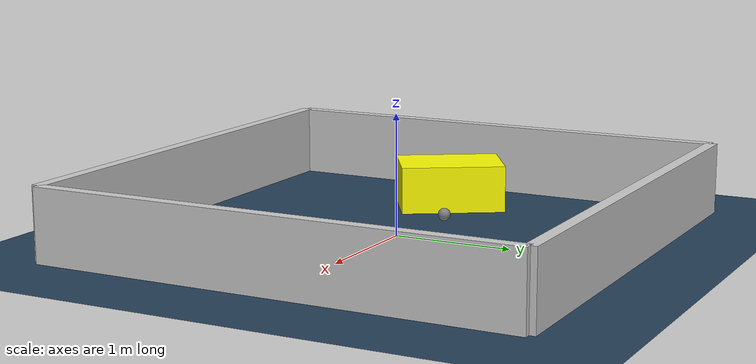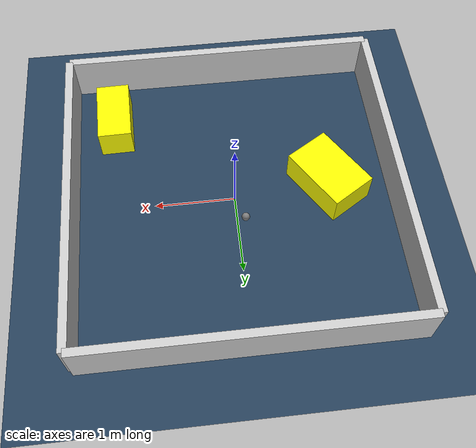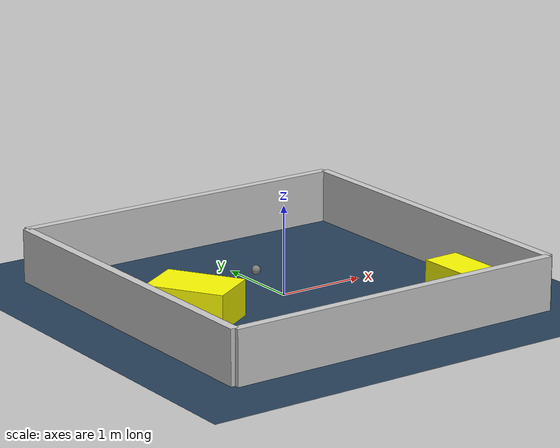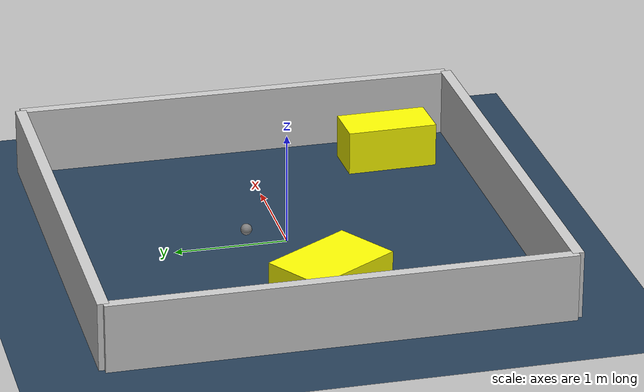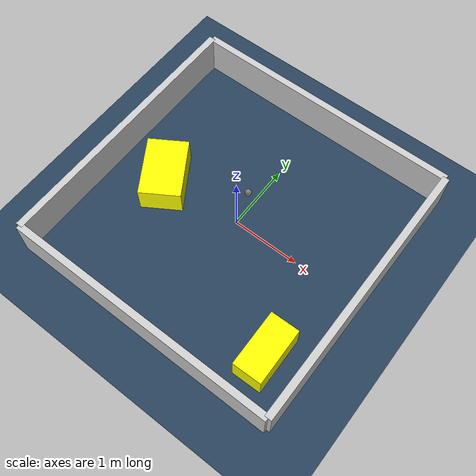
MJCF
<?xml version="1.0" ?>
<mujoco model="generated_environment">
  <option timestep="0.01" integrator="RK4" cone="elliptic"/>
  <default>
    <geom density="1"/>
  </default>
  <asset>
    <texture builtin="gradient" height="3072" rgb1="0.3 0.5 0.7" rgb2="0 0 0" type="skybox" width="512"/>
    <texture builtin="checker" height="300" mark="edge" markrgb="0.8 0.8 0.8" name="groundplane" rgb1="0.2 0.3 0.4" rgb2="0.1 0.2 0.3" type="2d" width="300"/>
    <material name="groundplane" reflectance="0.2" texrepeat="5 5" texture="groundplane" texuniform="true"/>
    <material name="robot" rgba="0.0 1.0 0.0 1"/>
  </asset>
  <worldbody>
    <light dir="0 0 -1" directional="true" pos="0 0 1.5"/>
    <geom condim="4" friction="1.0 0.005 0.001" material="groundplane" name="floor" size="0 0 0.05" type="plane"/>
    <body name="walls">
      <geom name="wall_1" condim="4" pos="-2.0 0.0 0.3" rgba="0.800000011920929 0.800000011920929 0.800000011920929 1.0" size="0.05 2.0 0.3" type="box"/>
      <geom name="wall_2" condim="4" pos="2.0 0.0 0.3" rgba="0.800000011920929 0.800000011920929 0.800000011920929 1.0" size="0.05 2.0 0.3" type="box"/>
      <geom name="wall_3" condim="4" pos="0.0 -2.0 0.3" rgba="0.800000011920929 0.800000011920929 0.800000011920929 1.0" size="2.0 0.05 0.3" type="box"/>
      <geom name="wall_4" condim="4" pos="0.0 2.0 0.3" rgba="0.800000011920929 0.800000011920929 0.800000011920929 1.0" size="2.0 0.05 0.3" type="box"/>
    </body>
    <body name="robot">
      <joint name="joint_x" type="slide" pos="0 0 0" axis="1 0 0"/>
      <joint name="joint_y" type="slide" pos="0 0 0" axis="0 1 0"/>
      <geom name="robot" type="sphere" pos="-0.0935722613898744 0.38551108082393615 0.2" size="0.05" mass="5." friction="1.0 0.005 0.0001" condim="4"/>
      <site name="sensor_ball"/>
    </body>
    <body name="obstacle_1_movable">
      <geom name="obstacle_1_movable" condim="4" pos="-1.197585015100223 -0.09003848102073153 0.2" euler="0 0 211.9489610859859" friction="1.0 0.005 0.001" rgba="1 1 0 1" size="0.2967967932185511 0.4452327826515373 0.2" type="box" mass="0.1"/>
      <joint type="free"/>
    </body>
    <body name="obstacle_2_movable">
      <geom name="obstacle_2_movable" condim="4" pos="1.456126426011422 -1.2883685369589726 0.2" euler="0 0 91.1874679007132" friction="1.0 0.005 0.001" rgba="1 1 0 1" size="0.4099059757588942 0.2112163237537173 0.2" type="box" mass="0.1"/>
      <joint type="free"/>
    </body>
  </worldbody>
  <actuator>
    <motor name="actuator_x" joint="joint_x" gear="1" ctrlrange="-1 1"/>
    <motor name="actuator_y" joint="joint_y" gear="1" ctrlrange="-1 1"/>
  </actuator>
</mujoco>
